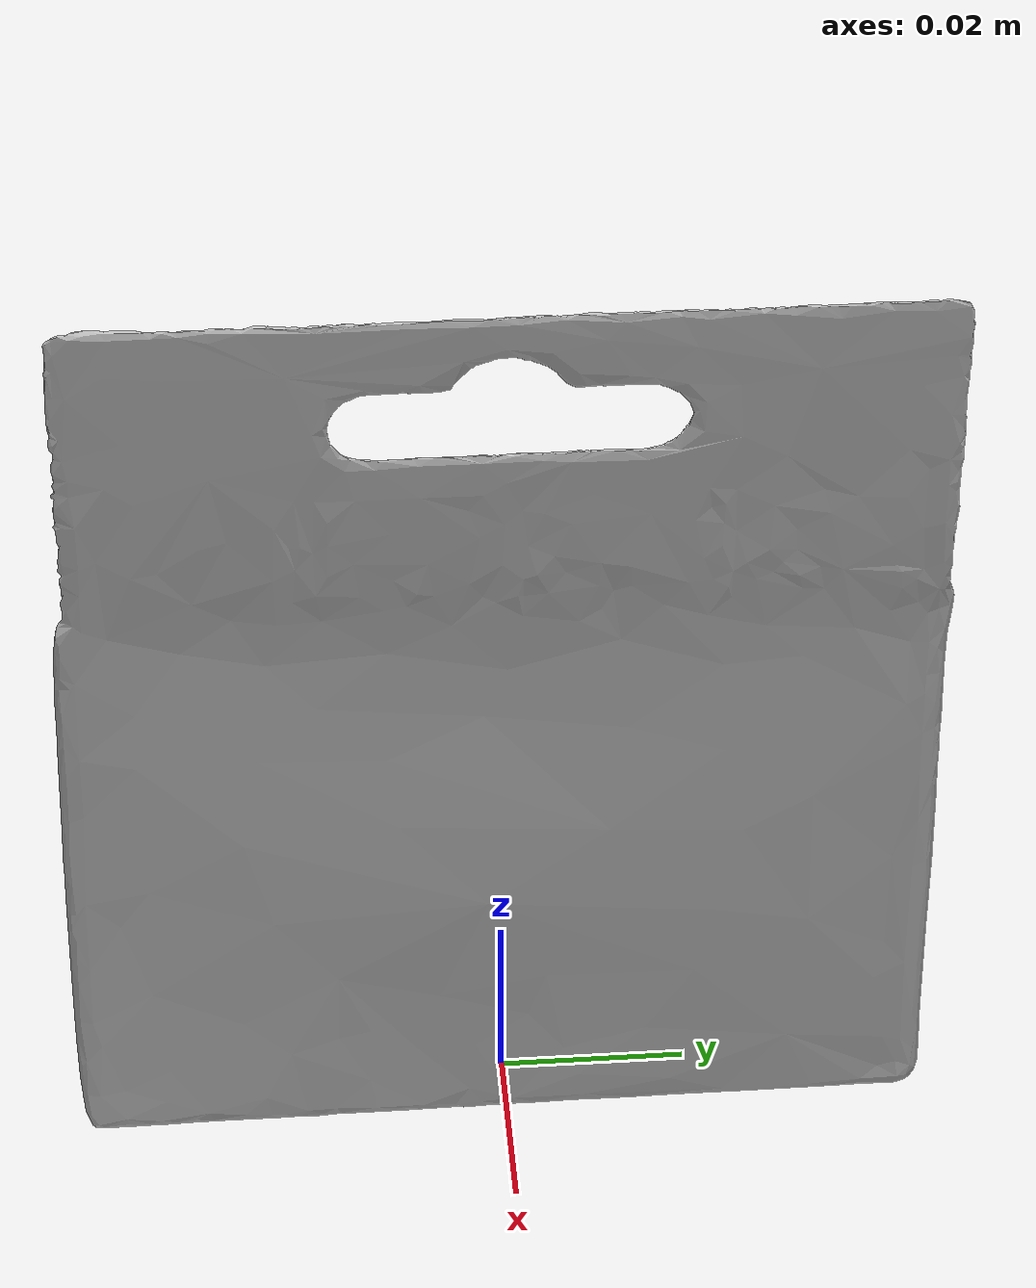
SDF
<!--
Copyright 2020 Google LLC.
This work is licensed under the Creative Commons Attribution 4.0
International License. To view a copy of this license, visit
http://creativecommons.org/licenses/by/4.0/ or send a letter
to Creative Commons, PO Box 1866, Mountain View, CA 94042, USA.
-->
<?xml version="1.0" ?>
<sdf version="1.6">
  <model name="Canon_Pixma_Chromalife_100_Magenta_8">
    <link name="link_0">
      <visual name="visual">
        <geometry>
          <mesh>
            <uri>meshes/model.obj</uri>
          </mesh>
        </geometry>
      </visual>
      <collision name="collision_0">
        <geometry>
          <mesh>
            <uri>meshes/model.obj</uri>
          </mesh>
        </geometry>
      </collision>
    </link>
  </model>
</sdf>
